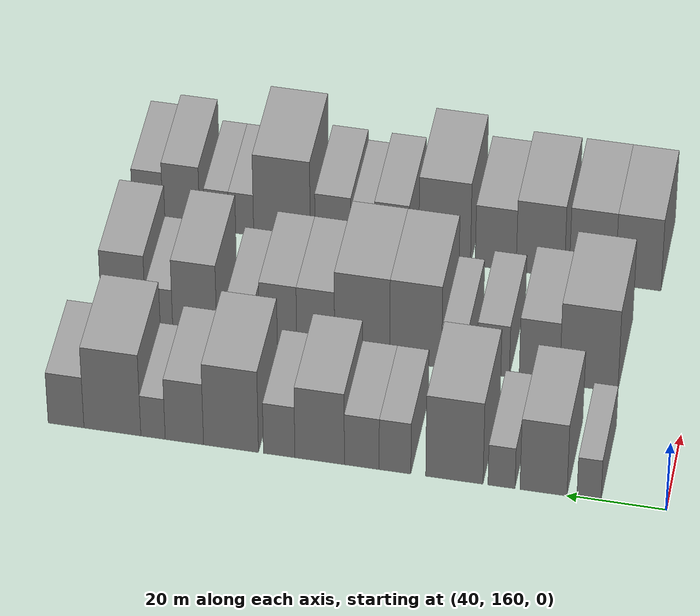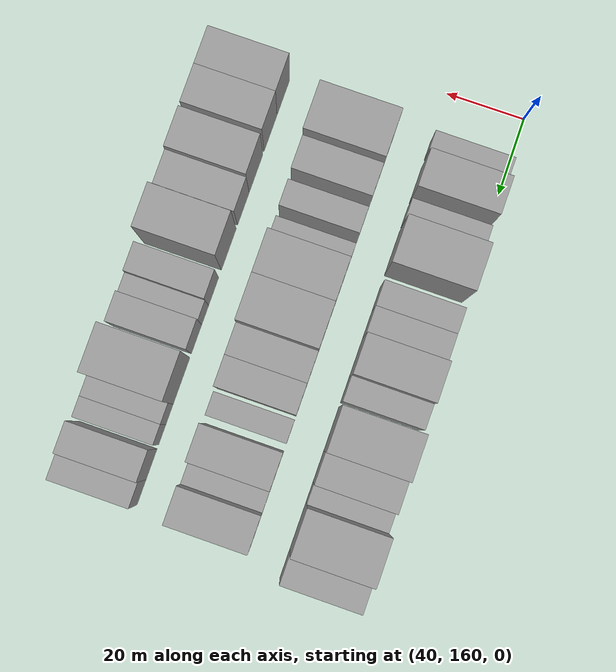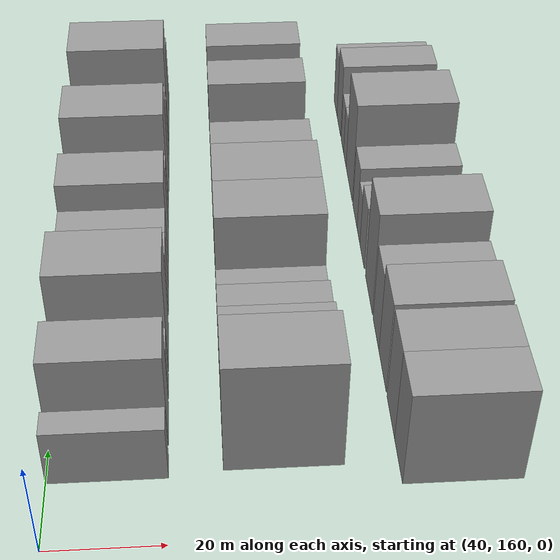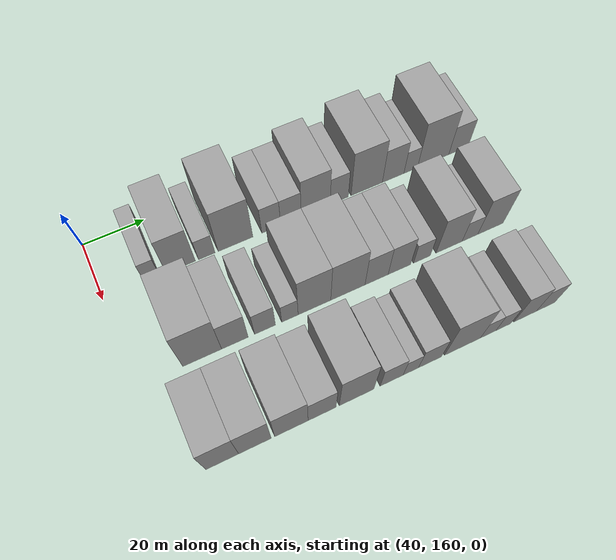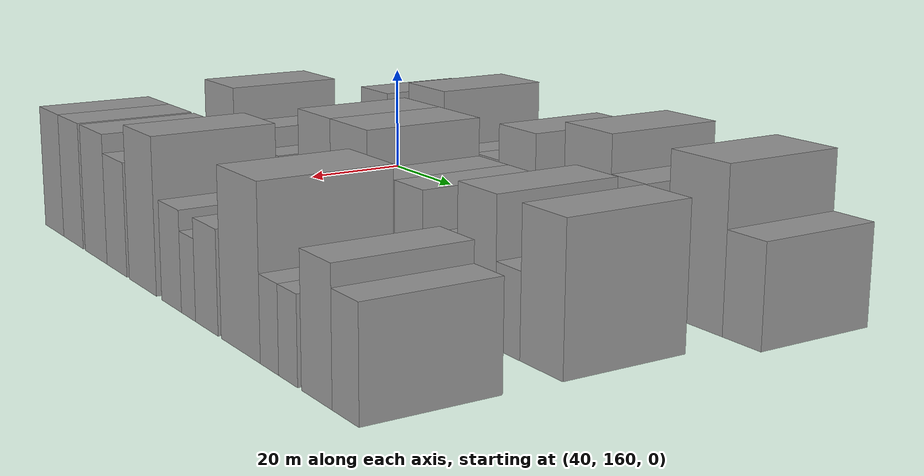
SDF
<sdf version="1.6">
 <world name="default">
  <model name="building_72">
   <static>1</static>
   <pose>50.0000 175.5228 0 0.000000 0.000000 0.000000</pose>
   <link name="link">
    <pose>0 0 6.00 0 0 0</pose>
    <collision name="collision"><geometry><box><size>20.0000 4.8237 12.0000</size></box></geometry></collision>
    <visual name="visual">
     <cast_shadows>0</cast_shadows>
     <geometry><box><size>20.0000 4.8237 12.0000</size></box></geometry>
     <material>
      <script>
       <uri>model://grey_wall/materials/scripts</uri>
       <uri>model://grey_wall/materials/textures</uri>
       <name>vrc/grey_wall</name>
      </script>
     </material>
    </visual>
   </link>
  </model>
  <model name="building_73">
   <static>1</static>
   <pose>50.0000 184.6478 0 0.000000 0.000000 0.000000</pose>
   <link name="link">
    <pose>0 0 10.50 0 0 0</pose>
    <collision name="collision"><geometry><box><size>20.0000 9.4262 21.0000</size></box></geometry></collision>
    <visual name="visual">
     <cast_shadows>0</cast_shadows>
     <geometry><box><size>20.0000 9.4262 21.0000</size></box></geometry>
     <material>
      <script>
       <uri>model://grey_wall/materials/scripts</uri>
       <uri>model://grey_wall/materials/textures</uri>
       <name>vrc/grey_wall</name>
      </script>
     </material>
    </visual>
   </link>
  </model>
  <model name="building_74">
   <static>1</static>
   <pose>50.0000 193.0706 0 0.000000 0.000000 0.000000</pose>
   <link name="link">
    <pose>0 0 6.00 0 0 0</pose>
    <collision name="collision"><geometry><box><size>20.0000 5.4195 12.0000</size></box></geometry></collision>
    <visual name="visual">
     <cast_shadows>0</cast_shadows>
     <geometry><box><size>20.0000 5.4195 12.0000</size></box></geometry>
     <material>
      <script>
       <uri>model://grey_wall/materials/scripts</uri>
       <uri>model://grey_wall/materials/textures</uri>
       <name>vrc/grey_wall</name>
      </script>
     </material>
    </visual>
   </link>
  </model>
  <model name="building_75">
   <static>1</static>
   <pose>50.0000 202.5491 0 0.000000 0.000000 0.000000</pose>
   <link name="link">
    <pose>0 0 12.00 0 0 0</pose>
    <collision name="collision"><geometry><box><size>20.0000 11.5376 24.0000</size></box></geometry></collision>
    <visual name="visual">
     <cast_shadows>0</cast_shadows>
     <geometry><box><size>20.0000 11.5376 24.0000</size></box></geometry>
     <material>
      <script>
       <uri>model://grey_wall/materials/scripts</uri>
       <uri>model://grey_wall/materials/textures</uri>
       <name>vrc/grey_wall</name>
      </script>
     </material>
    </visual>
   </link>
  </model>
  <model name="building_76">
   <static>1</static>
   <pose>50.0000 214.5191 0 0.000000 0.000000 0.000000</pose>
   <link name="link">
    <pose>0 0 7.50 0 0 0</pose>
    <collision name="collision"><geometry><box><size>20.0000 6.4022 15.0000</size></box></geometry></collision>
    <visual name="visual">
     <cast_shadows>0</cast_shadows>
     <geometry><box><size>20.0000 6.4022 15.0000</size></box></geometry>
     <material>
      <script>
       <uri>model://grey_wall/materials/scripts</uri>
       <uri>model://grey_wall/materials/textures</uri>
       <name>vrc/grey_wall</name>
      </script>
     </material>
    </visual>
   </link>
  </model>
  <model name="building_77">
   <static>1</static>
   <pose>50.0000 221.2365 0 0.000000 0.000000 0.000000</pose>
   <link name="link">
    <pose>0 0 7.50 0 0 0</pose>
    <collision name="collision"><geometry><box><size>20.0000 7.0326 15.0000</size></box></geometry></collision>
    <visual name="visual">
     <cast_shadows>0</cast_shadows>
     <geometry><box><size>20.0000 7.0326 15.0000</size></box></geometry>
     <material>
      <script>
       <uri>model://grey_wall/materials/scripts</uri>
       <uri>model://grey_wall/materials/textures</uri>
       <name>vrc/grey_wall</name>
      </script>
     </material>
    </visual>
   </link>
  </model>
  <model name="building_78">
   <static>1</static>
   <pose>50.0000 229.7647 0 0.000000 0.000000 0.000000</pose>
   <link name="link">
    <pose>0 0 10.50 0 0 0</pose>
    <collision name="collision"><geometry><box><size>20.0000 10.0237 21.0000</size></box></geometry></collision>
    <visual name="visual">
     <cast_shadows>0</cast_shadows>
     <geometry><box><size>20.0000 10.0237 21.0000</size></box></geometry>
     <material>
      <script>
       <uri>model://grey_wall/materials/scripts</uri>
       <uri>model://grey_wall/materials/textures</uri>
       <name>vrc/grey_wall</name>
      </script>
     </material>
    </visual>
   </link>
  </model>
  <model name="building_79">
   <static>1</static>
   <pose>50.0000 237.9701 0 0.000000 0.000000 0.000000</pose>
   <link name="link">
    <pose>0 0 7.50 0 0 0</pose>
    <collision name="collision"><geometry><box><size>20.0000 6.3873 15.0000</size></box></geometry></collision>
    <visual name="visual">
     <cast_shadows>0</cast_shadows>
     <geometry><box><size>20.0000 6.3873 15.0000</size></box></geometry>
     <material>
      <script>
       <uri>model://grey_wall/materials/scripts</uri>
       <uri>model://grey_wall/materials/textures</uri>
       <name>vrc/grey_wall</name>
      </script>
     </material>
    </visual>
   </link>
  </model>
  <model name="building_80">
   <static>1</static>
   <pose>50.0000 247.7538 0 0.000000 0.000000 0.000000</pose>
   <link name="link">
    <pose>0 0 12.00 0 0 0</pose>
    <collision name="collision"><geometry><box><size>20.0000 11.1800 24.0000</size></box></geometry></collision>
    <visual name="visual">
     <cast_shadows>0</cast_shadows>
     <geometry><box><size>20.0000 11.1800 24.0000</size></box></geometry>
     <material>
      <script>
       <uri>model://grey_wall/materials/scripts</uri>
       <uri>model://grey_wall/materials/textures</uri>
       <name>vrc/grey_wall</name>
      </script>
     </material>
    </visual>
   </link>
  </model>
  <model name="building_81">
   <static>1</static>
   <pose>50.0000 257.2533 0 0.000000 0.000000 0.000000</pose>
   <link name="link">
    <pose>0 0 9.00 0 0 0</pose>
    <collision name="collision"><geometry><box><size>20.0000 7.8191 18.0000</size></box></geometry></collision>
    <visual name="visual">
     <cast_shadows>0</cast_shadows>
     <geometry><box><size>20.0000 7.8191 18.0000</size></box></geometry>
     <material>
      <script>
       <uri>model://grey_wall/materials/scripts</uri>
       <uri>model://grey_wall/materials/textures</uri>
       <name>vrc/grey_wall</name>
      </script>
     </material>
    </visual>
   </link>
  </model>
  <model name="building_82">
   <static>1</static>
   <pose>50.0000 263.6505 0 0.000000 0.000000 0.000000</pose>
   <link name="link">
    <pose>0 0 6.00 0 0 0</pose>
    <collision name="collision"><geometry><box><size>20.0000 4.9752 12.0000</size></box></geometry></collision>
    <visual name="visual">
     <cast_shadows>0</cast_shadows>
     <geometry><box><size>20.0000 4.9752 12.0000</size></box></geometry>
     <material>
      <script>
       <uri>model://grey_wall/materials/scripts</uri>
       <uri>model://grey_wall/materials/textures</uri>
       <name>vrc/grey_wall</name>
      </script>
     </material>
    </visual>
   </link>
  </model>
  <model name="building_83">
   <static>1</static>
   <pose>50.0000 271.9562 0 0.000000 0.000000 0.000000</pose>
   <link name="link">
    <pose>0 0 12.00 0 0 0</pose>
    <collision name="collision"><geometry><box><size>20.0000 11.6362 24.0000</size></box></geometry></collision>
    <visual name="visual">
     <cast_shadows>0</cast_shadows>
     <geometry><box><size>20.0000 11.6362 24.0000</size></box></geometry>
     <material>
      <script>
       <uri>model://grey_wall/materials/scripts</uri>
       <uri>model://grey_wall/materials/textures</uri>
       <name>vrc/grey_wall</name>
      </script>
     </material>
    </visual>
   </link>
  </model>
  <model name="building_84">
   <static>1</static>
   <pose>50.0000 281.4406 0 0.000000 0.000000 0.000000</pose>
   <link name="link">
    <pose>0 0 7.50 0 0 0</pose>
    <collision name="collision"><geometry><box><size>20.0000 7.3326 15.0000</size></box></geometry></collision>
    <visual name="visual">
     <cast_shadows>0</cast_shadows>
     <geometry><box><size>20.0000 7.3326 15.0000</size></box></geometry>
     <material>
      <script>
       <uri>model://grey_wall/materials/scripts</uri>
       <uri>model://grey_wall/materials/textures</uri>
       <name>vrc/grey_wall</name>
      </script>
     </material>
    </visual>
   </link>
  </model>
  <model name="building_184">
   <static>1</static>
   <pose>79.0000 180.1607 0 0.000000 0.000000 0.000000</pose>
   <link name="link">
    <pose>0 0 12.00 0 0 0</pose>
    <collision name="collision"><geometry><box><size>20.0000 11.8796 24.0000</size></box></geometry></collision>
    <visual name="visual">
     <cast_shadows>0</cast_shadows>
     <geometry><box><size>20.0000 11.8796 24.0000</size></box></geometry>
     <material>
      <script>
       <uri>model://grey_wall/materials/scripts</uri>
       <uri>model://grey_wall/materials/textures</uri>
       <name>vrc/grey_wall</name>
      </script>
     </material>
    </visual>
   </link>
  </model>
  <model name="building_185">
   <static>1</static>
   <pose>79.0000 190.2335 0 0.000000 0.000000 0.000000</pose>
   <link name="link">
    <pose>0 0 9.00 0 0 0</pose>
    <collision name="collision"><geometry><box><size>20.0000 8.2661 18.0000</size></box></geometry></collision>
    <visual name="visual">
     <cast_shadows>0</cast_shadows>
     <geometry><box><size>20.0000 8.2661 18.0000</size></box></geometry>
     <material>
      <script>
       <uri>model://grey_wall/materials/scripts</uri>
       <uri>model://grey_wall/materials/textures</uri>
       <name>vrc/grey_wall</name>
      </script>
     </material>
    </visual>
   </link>
  </model>
  <model name="building_186">
   <static>1</static>
   <pose>79.0000 199.6739 0 0.000000 0.000000 0.000000</pose>
   <link name="link">
    <pose>0 0 7.50 0 0 0</pose>
    <collision name="collision"><geometry><box><size>20.0000 6.6147 15.0000</size></box></geometry></collision>
    <visual name="visual">
     <cast_shadows>0</cast_shadows>
     <geometry><box><size>20.0000 6.6147 15.0000</size></box></geometry>
     <material>
      <script>
       <uri>model://grey_wall/materials/scripts</uri>
       <uri>model://grey_wall/materials/textures</uri>
       <name>vrc/grey_wall</name>
      </script>
     </material>
    </visual>
   </link>
  </model>
  <model name="building_187">
   <static>1</static>
   <pose>79.0000 207.6143 0 0.000000 0.000000 0.000000</pose>
   <link name="link">
    <pose>0 0 6.00 0 0 0</pose>
    <collision name="collision"><geometry><box><size>20.0000 5.2661 12.0000</size></box></geometry></collision>
    <visual name="visual">
     <cast_shadows>0</cast_shadows>
     <geometry><box><size>20.0000 5.2661 12.0000</size></box></geometry>
     <material>
      <script>
       <uri>model://grey_wall/materials/scripts</uri>
       <uri>model://grey_wall/materials/textures</uri>
       <name>vrc/grey_wall</name>
      </script>
     </material>
    </visual>
   </link>
  </model>
  <model name="building_188">
   <static>1</static>
   <pose>79.0000 215.5595 0 0.000000 0.000000 0.000000</pose>
   <link name="link">
    <pose>0 0 12.00 0 0 0</pose>
    <collision name="collision"><geometry><box><size>20.0000 10.6242 24.0000</size></box></geometry></collision>
    <visual name="visual">
     <cast_shadows>0</cast_shadows>
     <geometry><box><size>20.0000 10.6242 24.0000</size></box></geometry>
     <material>
      <script>
       <uri>model://grey_wall/materials/scripts</uri>
       <uri>model://grey_wall/materials/textures</uri>
       <name>vrc/grey_wall</name>
      </script>
     </material>
    </visual>
   </link>
  </model>
  <model name="building_189">
   <static>1</static>
   <pose>79.0000 226.5556 0 0.000000 0.000000 0.000000</pose>
   <link name="link">
    <pose>0 0 12.00 0 0 0</pose>
    <collision name="collision"><geometry><box><size>20.0000 11.3680 24.0000</size></box></geometry></collision>
    <visual name="visual">
     <cast_shadows>0</cast_shadows>
     <geometry><box><size>20.0000 11.3680 24.0000</size></box></geometry>
     <material>
      <script>
       <uri>model://grey_wall/materials/scripts</uri>
       <uri>model://grey_wall/materials/textures</uri>
       <name>vrc/grey_wall</name>
      </script>
     </material>
    </visual>
   </link>
  </model>
  <model name="building_190">
   <static>1</static>
   <pose>79.0000 236.1468 0 0.000000 0.000000 0.000000</pose>
   <link name="link">
    <pose>0 0 9.00 0 0 0</pose>
    <collision name="collision"><geometry><box><size>20.0000 7.8143 18.0000</size></box></geometry></collision>
    <visual name="visual">
     <cast_shadows>0</cast_shadows>
     <geometry><box><size>20.0000 7.8143 18.0000</size></box></geometry>
     <material>
      <script>
       <uri>model://grey_wall/materials/scripts</uri>
       <uri>model://grey_wall/materials/textures</uri>
       <name>vrc/grey_wall</name>
      </script>
     </material>
    </visual>
   </link>
  </model>
  <model name="building_191">
   <static>1</static>
   <pose>79.0000 243.8932 0 0.000000 0.000000 0.000000</pose>
   <link name="link">
    <pose>0 0 9.00 0 0 0</pose>
    <collision name="collision"><geometry><box><size>20.0000 7.6785 18.0000</size></box></geometry></collision>
    <visual name="visual">
     <cast_shadows>0</cast_shadows>
     <geometry><box><size>20.0000 7.6785 18.0000</size></box></geometry>
     <material>
      <script>
       <uri>model://grey_wall/materials/scripts</uri>
       <uri>model://grey_wall/materials/textures</uri>
       <name>vrc/grey_wall</name>
      </script>
     </material>
    </visual>
   </link>
  </model>
  <model name="building_192">
   <static>1</static>
   <pose>79.0000 251.6513 0 0.000000 0.000000 0.000000</pose>
   <link name="link">
    <pose>0 0 6.00 0 0 0</pose>
    <collision name="collision"><geometry><box><size>20.0000 5.8377 12.0000</size></box></geometry></collision>
    <visual name="visual">
     <cast_shadows>0</cast_shadows>
     <geometry><box><size>20.0000 5.8377 12.0000</size></box></geometry>
     <material>
      <script>
       <uri>model://grey_wall/materials/scripts</uri>
       <uri>model://grey_wall/materials/textures</uri>
       <name>vrc/grey_wall</name>
      </script>
     </material>
    </visual>
   </link>
  </model>
  <model name="building_193">
   <static>1</static>
   <pose>79.0000 261.1544 0 0.000000 0.000000 0.000000</pose>
   <link name="link">
    <pose>0 0 10.50 0 0 0</pose>
    <collision name="collision"><geometry><box><size>20.0000 9.1684 21.0000</size></box></geometry></collision>
    <visual name="visual">
     <cast_shadows>0</cast_shadows>
     <geometry><box><size>20.0000 9.1684 21.0000</size></box></geometry>
     <material>
      <script>
       <uri>model://grey_wall/materials/scripts</uri>
       <uri>model://grey_wall/materials/textures</uri>
       <name>vrc/grey_wall</name>
      </script>
     </material>
    </visual>
   </link>
  </model>
  <model name="building_194">
   <static>1</static>
   <pose>79.0000 268.5288 0 0.000000 0.000000 0.000000</pose>
   <link name="link">
    <pose>0 0 6.00 0 0 0</pose>
    <collision name="collision"><geometry><box><size>20.0000 5.5805 12.0000</size></box></geometry></collision>
    <visual name="visual">
     <cast_shadows>0</cast_shadows>
     <geometry><box><size>20.0000 5.5805 12.0000</size></box></geometry>
     <material>
      <script>
       <uri>model://grey_wall/materials/scripts</uri>
       <uri>model://grey_wall/materials/textures</uri>
       <name>vrc/grey_wall</name>
      </script>
     </material>
    </visual>
   </link>
  </model>
  <model name="building_195">
   <static>1</static>
   <pose>79.0000 275.9075 0 0.000000 0.000000 0.000000</pose>
   <link name="link">
    <pose>0 0 10.50 0 0 0</pose>
    <collision name="collision"><geometry><box><size>20.0000 9.1767 21.0000</size></box></geometry></collision>
    <visual name="visual">
     <cast_shadows>0</cast_shadows>
     <geometry><box><size>20.0000 9.1767 21.0000</size></box></geometry>
     <material>
      <script>
       <uri>model://grey_wall/materials/scripts</uri>
       <uri>model://grey_wall/materials/textures</uri>
       <name>vrc/grey_wall</name>
      </script>
     </material>
    </visual>
   </link>
  </model>
  <model name="building_292">
   <static>1</static>
   <pose>108.0000 174.4905 0 0.000000 0.000000 0.000000</pose>
   <link name="link">
    <pose>0 0 10.50 0 0 0</pose>
    <collision name="collision"><geometry><box><size>20.0000 9.4895 21.0000</size></box></geometry></collision>
    <visual name="visual">
     <cast_shadows>0</cast_shadows>
     <geometry><box><size>20.0000 9.4895 21.0000</size></box></geometry>
     <material>
      <script>
       <uri>model://grey_wall/materials/scripts</uri>
       <uri>model://grey_wall/materials/textures</uri>
       <name>vrc/grey_wall</name>
      </script>
     </material>
    </visual>
   </link>
  </model>
  <model name="building_293">
   <static>1</static>
   <pose>108.0000 184.0177 0 0.000000 0.000000 0.000000</pose>
   <link name="link">
    <pose>0 0 10.50 0 0 0</pose>
    <collision name="collision"><geometry><box><size>20.0000 9.5649 21.0000</size></box></geometry></collision>
    <visual name="visual">
     <cast_shadows>0</cast_shadows>
     <geometry><box><size>20.0000 9.5649 21.0000</size></box></geometry>
     <material>
      <script>
       <uri>model://grey_wall/materials/scripts</uri>
       <uri>model://grey_wall/materials/textures</uri>
       <name>vrc/grey_wall</name>
      </script>
     </material>
    </visual>
   </link>
  </model>
  <model name="building_294">
   <static>1</static>
   <pose>108.0000 194.8125 0 0.000000 0.000000 0.000000</pose>
   <link name="link">
    <pose>0 0 10.50 0 0 0</pose>
    <collision name="collision"><geometry><box><size>20.0000 10.0248 21.0000</size></box></geometry></collision>
    <visual name="visual">
     <cast_shadows>0</cast_shadows>
     <geometry><box><size>20.0000 10.0248 21.0000</size></box></geometry>
     <material>
      <script>
       <uri>model://grey_wall/materials/scripts</uri>
       <uri>model://grey_wall/materials/textures</uri>
       <name>vrc/grey_wall</name>
      </script>
     </material>
    </visual>
   </link>
  </model>
  <model name="building_295">
   <static>1</static>
   <pose>108.0000 204.0847 0 0.000000 0.000000 0.000000</pose>
   <link name="link">
    <pose>0 0 9.00 0 0 0</pose>
    <collision name="collision"><geometry><box><size>20.0000 8.5195 18.0000</size></box></geometry></collision>
    <visual name="visual">
     <cast_shadows>0</cast_shadows>
     <geometry><box><size>20.0000 8.5195 18.0000</size></box></geometry>
     <material>
      <script>
       <uri>model://grey_wall/materials/scripts</uri>
       <uri>model://grey_wall/materials/textures</uri>
       <name>vrc/grey_wall</name>
      </script>
     </material>
    </visual>
   </link>
  </model>
  <model name="building_296">
   <static>1</static>
   <pose>108.0000 214.7447 0 0.000000 0.000000 0.000000</pose>
   <link name="link">
    <pose>0 0 12.00 0 0 0</pose>
    <collision name="collision"><geometry><box><size>20.0000 10.8006 24.0000</size></box></geometry></collision>
    <visual name="visual">
     <cast_shadows>0</cast_shadows>
     <geometry><box><size>20.0000 10.8006 24.0000</size></box></geometry>
     <material>
      <script>
       <uri>model://grey_wall/materials/scripts</uri>
       <uri>model://grey_wall/materials/textures</uri>
       <name>vrc/grey_wall</name>
      </script>
     </material>
    </visual>
   </link>
  </model>
  <model name="building_297">
   <static>1</static>
   <pose>108.0000 225.7770 0 0.000000 0.000000 0.000000</pose>
   <link name="link">
    <pose>0 0 7.50 0 0 0</pose>
    <collision name="collision"><geometry><box><size>20.0000 7.2639 15.0000</size></box></geometry></collision>
    <visual name="visual">
     <cast_shadows>0</cast_shadows>
     <geometry><box><size>20.0000 7.2639 15.0000</size></box></geometry>
     <material>
      <script>
       <uri>model://grey_wall/materials/scripts</uri>
       <uri>model://grey_wall/materials/textures</uri>
       <name>vrc/grey_wall</name>
      </script>
     </material>
    </visual>
   </link>
  </model>
  <model name="building_298">
   <static>1</static>
   <pose>108.0000 231.8840 0 0.000000 0.000000 0.000000</pose>
   <link name="link">
    <pose>0 0 6.00 0 0 0</pose>
    <collision name="collision"><geometry><box><size>20.0000 4.9500 12.0000</size></box></geometry></collision>
    <visual name="visual">
     <cast_shadows>0</cast_shadows>
     <geometry><box><size>20.0000 4.9500 12.0000</size></box></geometry>
     <material>
      <script>
       <uri>model://grey_wall/materials/scripts</uri>
       <uri>model://grey_wall/materials/textures</uri>
       <name>vrc/grey_wall</name>
      </script>
     </material>
    </visual>
   </link>
  </model>
  <model name="building_299">
   <static>1</static>
   <pose>108.0000 238.1082 0 0.000000 0.000000 0.000000</pose>
   <link name="link">
    <pose>0 0 7.50 0 0 0</pose>
    <collision name="collision"><geometry><box><size>20.0000 7.4985 15.0000</size></box></geometry></collision>
    <visual name="visual">
     <cast_shadows>0</cast_shadows>
     <geometry><box><size>20.0000 7.4985 15.0000</size></box></geometry>
     <material>
      <script>
       <uri>model://grey_wall/materials/scripts</uri>
       <uri>model://grey_wall/materials/textures</uri>
       <name>vrc/grey_wall</name>
      </script>
     </material>
    </visual>
   </link>
  </model>
  <model name="building_300">
   <static>1</static>
   <pose>108.0000 248.8177 0 0.000000 0.000000 0.000000</pose>
   <link name="link">
    <pose>0 0 12.00 0 0 0</pose>
    <collision name="collision"><geometry><box><size>20.0000 11.9206 24.0000</size></box></geometry></collision>
    <visual name="visual">
     <cast_shadows>0</cast_shadows>
     <geometry><box><size>20.0000 11.9206 24.0000</size></box></geometry>
     <material>
      <script>
       <uri>model://grey_wall/materials/scripts</uri>
       <uri>model://grey_wall/materials/textures</uri>
       <name>vrc/grey_wall</name>
      </script>
     </material>
    </visual>
   </link>
  </model>
  <model name="building_301">
   <static>1</static>
   <pose>108.0000 257.3866 0 0.000000 0.000000 0.000000</pose>
   <link name="link">
    <pose>0 0 6.00 0 0 0</pose>
    <collision name="collision"><geometry><box><size>20.0000 5.2171 12.0000</size></box></geometry></collision>
    <visual name="visual">
     <cast_shadows>0</cast_shadows>
     <geometry><box><size>20.0000 5.2171 12.0000</size></box></geometry>
     <material>
      <script>
       <uri>model://grey_wall/materials/scripts</uri>
       <uri>model://grey_wall/materials/textures</uri>
       <name>vrc/grey_wall</name>
      </script>
     </material>
    </visual>
   </link>
  </model>
  <model name="building_302">
   <static>1</static>
   <pose>108.0000 262.5639 0 0.000000 0.000000 0.000000</pose>
   <link name="link">
    <pose>0 0 6.00 0 0 0</pose>
    <collision name="collision"><geometry><box><size>20.0000 5.1374 12.0000</size></box></geometry></collision>
    <visual name="visual">
     <cast_shadows>0</cast_shadows>
     <geometry><box><size>20.0000 5.1374 12.0000</size></box></geometry>
     <material>
      <script>
       <uri>model://grey_wall/materials/scripts</uri>
       <uri>model://grey_wall/materials/textures</uri>
       <name>vrc/grey_wall</name>
      </script>
     </material>
    </visual>
   </link>
  </model>
  <model name="building_303">
   <static>1</static>
   <pose>108.0000 270.0235 0 0.000000 0.000000 0.000000</pose>
   <link name="link">
    <pose>0 0 9.00 0 0 0</pose>
    <collision name="collision"><geometry><box><size>20.0000 7.7819 18.0000</size></box></geometry></collision>
    <visual name="visual">
     <cast_shadows>0</cast_shadows>
     <geometry><box><size>20.0000 7.7819 18.0000</size></box></geometry>
     <material>
      <script>
       <uri>model://grey_wall/materials/scripts</uri>
       <uri>model://grey_wall/materials/textures</uri>
       <name>vrc/grey_wall</name>
      </script>
     </material>
    </visual>
   </link>
  </model>
  <model name="building_304">
   <static>1</static>
   <pose>108.0000 277.1102 0 0.000000 0.000000 0.000000</pose>
   <link name="link">
    <pose>0 0 7.50 0 0 0</pose>
    <collision name="collision"><geometry><box><size>20.0000 6.3914 15.0000</size></box></geometry></collision>
    <visual name="visual">
     <cast_shadows>0</cast_shadows>
     <geometry><box><size>20.0000 6.3914 15.0000</size></box></geometry>
     <material>
      <script>
       <uri>model://grey_wall/materials/scripts</uri>
       <uri>model://grey_wall/materials/textures</uri>
       <name>vrc/grey_wall</name>
      </script>
     </material>
    </visual>
   </link>
  </model>
 </world>
</sdf>
